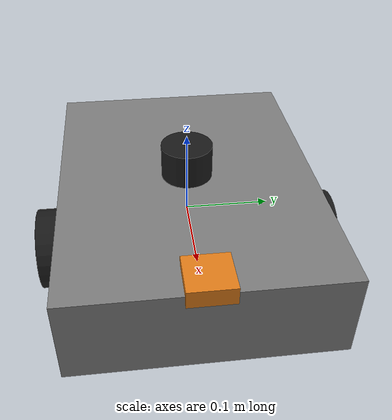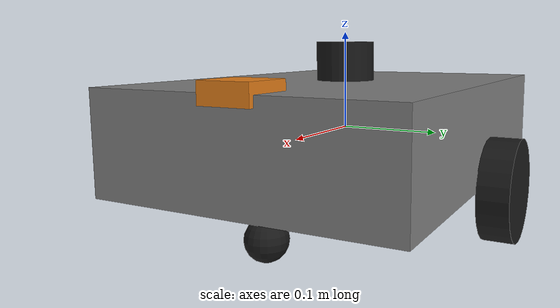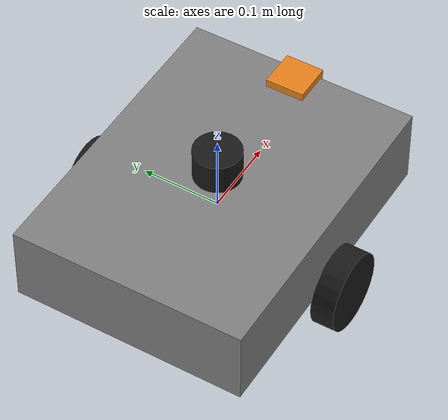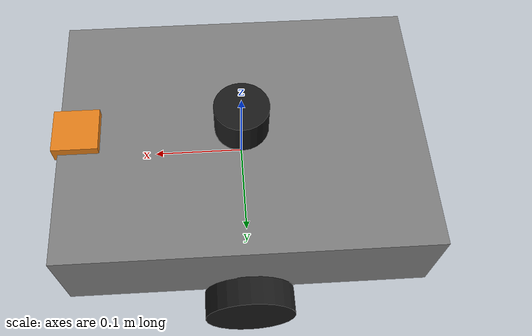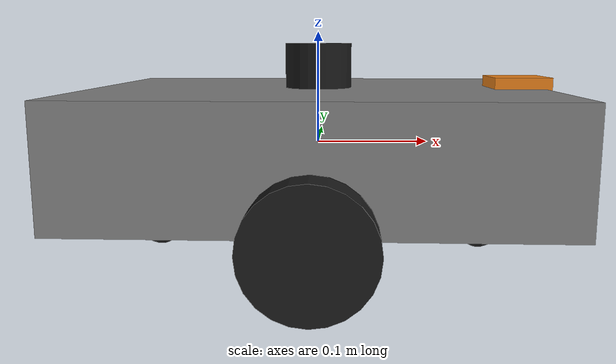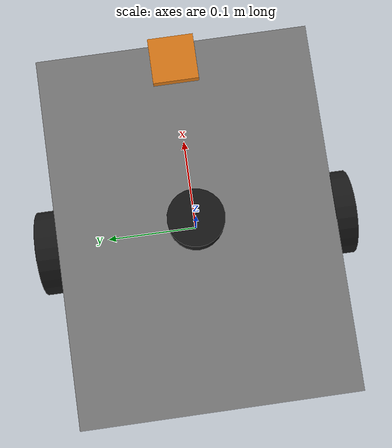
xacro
<?xml version="1.0"?>

<robot name="mobile_robot" xmlns:xacro="http://www.ros.org/wiki/xacro">

    <xacro:include filename="common_macros.xacro" />

    <!-- ============ 属性 ============ -->
    <!-- 底盘 -->
    <xacro:property name="base_length" value="0.4" />
    <xacro:property name="base_width" value="0.3" />
    <xacro:property name="base_height" value="0.1" />
    <xacro:property name="base_mass" value="3.0" />

    <!-- 驱动轮 -->
    <xacro:property name="wheel_radius" value="0.05" />
    <xacro:property name="wheel_width" value="0.03" />
    <xacro:property name="wheel_mass" value="0.3" />
    <xacro:property name="wheel_y" value="0.17" />

    <!-- 万向轮 -->
    <xacro:property name="caster_radius" value="0.02" />
    <xacro:property name="caster_mass" value="0.1" />

    <!-- 材质 -->
    <xacro:declare_material name="grey" rgba="0.5 0.5 0.5 1.0" />
    <xacro:declare_material name="black" rgba="0.1 0.1 0.1 1.0" />
    <xacro:declare_material name="orange" rgba="0.9 0.5 0.1 1.0" />

    <!-- ============ 底盘 ============ -->
    <link name="base_link">
        <visual>
            <geometry>
                <box size="${base_length} ${base_width} ${base_height}" />
            </geometry>
            <origin xyz="0 0 0" rpy="0 0 0" />
            <material name="grey" />
        </visual>
        <!-- 方向标记：橙色小方块在前方，方便区分朝向 -->
        <visual>
            <geometry>
                <box size="0.05 0.05 0.02" />
            </geometry>
            <origin xyz="0.18 0 0.05" rpy="0 0 0" />
            <material name="orange" />
        </visual>
        <collision>
            <geometry>
                <box size="${base_length} ${base_width} ${base_height}" />
            </geometry>
            <origin xyz="0 0 0" rpy="0 0 0" />
        </collision>
        <inertial>
            <origin xyz="0 0 0" rpy="0 0 0" />
            <mass value="${base_mass}" />
            <inertia
                ixx="${base_mass * (base_width*base_width + base_height*base_height) / 12}"
                ixy="0.0" ixz="0.0"
                iyy="${base_mass * (base_length*base_length + base_height*base_height) / 12}"
                iyz="0.0"
                izz="${base_mass * (base_length*base_length + base_width*base_width) / 12}" />
        </inertial>
    </link>

    <!-- ============ 左轮 ============ -->
    <link name="left_wheel_link">
        <visual>
            <geometry>
                <cylinder radius="${wheel_radius}" length="${wheel_width}" />
            </geometry>
            <origin xyz="0 0 0" rpy="${pi/2} 0 0" />
            <material name="black" />
        </visual>
        <collision>
            <geometry>
                <cylinder radius="${wheel_radius}" length="${wheel_width}" />
            </geometry>
            <origin xyz="0 0 0" rpy="${pi/2} 0 0" />
        </collision>
        <inertial>
            <origin xyz="0 0 0" rpy="0 0 0" />
            <mass value="${wheel_mass}" />
            <!-- 圆柱旋转 90° 后，轴向沿 y，所以 Iyy 是轴向惯量 -->
            <inertia
                ixx="${wheel_mass * (3*wheel_radius*wheel_radius + wheel_width*wheel_width) / 12}"
                ixy="0.0" ixz="0.0"
                iyy="${wheel_mass * wheel_radius * wheel_radius / 2}"
                iyz="0.0"
                izz="${wheel_mass * (3*wheel_radius*wheel_radius + wheel_width*wheel_width) / 12}" />
        </inertial>
    </link>

    <joint name="base_to_left_wheel" type="continuous">
        <parent link="base_link" />
        <child link="left_wheel_link" />
        <origin xyz="0 ${wheel_y} ${-base_height/2}" rpy="0 0 0" />
        <axis xyz="0 1 0" />
    </joint>

    <!-- ============ 右轮 ============ -->
    <link name="right_wheel_link">
        <visual>
            <geometry>
                <cylinder radius="${wheel_radius}" length="${wheel_width}" />
            </geometry>
            <origin xyz="0 0 0" rpy="${pi/2} 0 0" />
            <material name="black" />
        </visual>
        <collision>
            <geometry>
                <cylinder radius="${wheel_radius}" length="${wheel_width}" />
            </geometry>
            <origin xyz="0 0 0" rpy="${pi/2} 0 0" />
        </collision>
        <inertial>
            <origin xyz="0 0 0" rpy="0 0 0" />
            <mass value="${wheel_mass}" />
            <inertia
                ixx="${wheel_mass * (3*wheel_radius*wheel_radius + wheel_width*wheel_width) / 12}"
                ixy="0.0" ixz="0.0"
                iyy="${wheel_mass * wheel_radius * wheel_radius / 2}"
                iyz="0.0"
                izz="${wheel_mass * (3*wheel_radius*wheel_radius + wheel_width*wheel_width) / 12}" />
        </inertial>
    </link>

    <joint name="base_to_right_wheel" type="continuous">
        <parent link="base_link" />
        <child link="right_wheel_link" />
        <origin xyz="0 ${-wheel_y} ${-base_height/2}" rpy="0 0 0" />
        <axis xyz="0 1 0" />
    </joint>

    <!-- ============ 后万向轮 ============ -->
    <link name="caster_link">
        <visual>
            <geometry>
                <sphere radius="${caster_radius}" />
            </geometry>
            <material name="black" />
        </visual>
        <collision>
            <geometry>
                <sphere radius="${caster_radius}" />
            </geometry>
        </collision>
        <inertial>
            <origin xyz="0 0 0" rpy="0 0 0" />
            <mass value="${caster_mass}" />
            <inertia
                ixx="${2*caster_mass*caster_radius*caster_radius/5}"
                ixy="0.0" ixz="0.0"
                iyy="${2*caster_mass*caster_radius*caster_radius/5}"
                iyz="0.0"
                izz="${2*caster_mass*caster_radius*caster_radius/5}" />
        </inertial>
    </link>

    <joint name="base_to_caster" type="fixed">
        <parent link="base_link" />
        <child link="caster_link" />
        <origin xyz="-0.15 0 ${-base_height/2 - 0.03}" rpy="0 0 0" />
    </joint>

    <!-- ============ 前万向轮 ============ -->
    <link name="front_caster_link">
        <visual>
            <geometry>
                <sphere radius="${caster_radius}" />
            </geometry>
            <material name="black" />
        </visual>
        <collision>
            <geometry>
                <sphere radius="${caster_radius}" />
            </geometry>
        </collision>
        <inertial>
            <origin xyz="0 0 0" rpy="0 0 0" />
            <mass value="${caster_mass}" />
            <inertia
                ixx="${2*caster_mass*caster_radius*caster_radius/5}"
                ixy="0.0" ixz="0.0"
                iyy="${2*caster_mass*caster_radius*caster_radius/5}"
                iyz="0.0"
                izz="${2*caster_mass*caster_radius*caster_radius/5}" />
        </inertial>
    </link>

    <joint name="base_to_front_caster" type="fixed">
        <parent link="base_link" />
        <child link="front_caster_link" />
        <origin xyz="0.15 0 ${-base_height/2 - 0.03}" rpy="0 0 0" />
    </joint>

    <!-- 万向轮摩擦系数改为 0，让它能在平面上滑动 -->
    <gazebo reference="caster_link">
        <mu1>0.0</mu1>
        <mu2>0.0</mu2>
    </gazebo>

    <gazebo reference="front_caster_link">
        <mu1>0.0</mu1>
        <mu2>0.0</mu2>
    </gazebo>

    <!-- 轮子摩擦系数调高，保证抓地力 -->
    <gazebo reference="left_wheel_link">
        <mu1>1.0</mu1>
        <mu2>1.0</mu2>
    </gazebo>

    <gazebo reference="right_wheel_link">
        <mu1>1.0</mu1>
        <mu2>1.0</mu2>
    </gazebo>

    <!-- ============ ros2_control 硬件接口声明 ============ -->
    <ros2_control name="GazeboSystem" type="system">
        <hardware>
            <plugin>gz_ros2_control/GazeboSimSystem</plugin>
        </hardware>
        <joint name="base_to_left_wheel">
            <command_interface name="velocity">
                <param name="min">-10</param>
                <param name="max">10</param>
            </command_interface>
            <state_interface name="velocity" />
            <state_interface name="position" />
        </joint>
        <joint name="base_to_right_wheel">
            <command_interface name="velocity">
                <param name="min">-10</param>
                <param name="max">10</param>
            </command_interface>
            <state_interface name="velocity" />
            <state_interface name="position" />
        </joint>
    </ros2_control>

    <!-- ============ gz_ros2_control Gazebo 插件 ============ -->
    <gazebo>
        <plugin filename="libgz_ros2_control-system.so"
            name="gz_ros2_control::GazeboSimROS2ControlPlugin">
            <parameters>$(find learning_robot)/config/controllers.yaml</parameters>
        </plugin>
    </gazebo>

    <!-- ============ 激光雷达 ============ -->
    <xacro:property name="lidar_radius" value="0.03" />
    <xacro:property name="lidar_height" value="0.04" />
    <xacro:property name="lidar_mass" value="0.1" />

    <xacro:cylinder_link
        name="lidar_link"
        radius="${lidar_radius}" length="${lidar_height}"
        mass="${lidar_mass}" color="black" />

    <joint name="base_to_lidar" type="fixed">
        <parent link="base_link" />
        <child link="lidar_link" />
        <origin xyz="0 0 ${base_height/2 + lidar_height/2}" rpy="0 0 0" />
    </joint>

    <!-- ============ Gazebo 激光雷达传感器插件 ============ -->
    <gazebo reference="lidar_link">
        <sensor name="lidar" type="gpu_lidar">
            <topic>scan</topic>
            <gz_frame_id>lidar_link</gz_frame_id>
            <update_rate>10</update_rate>
            <always_on>true</always_on>
            <visualize>true</visualize>
            <lidar>
                <scan>
                    <horizontal>
                        <samples>360</samples>
                        <resolution>1</resolution>
                        <min_angle>-3.14159</min_angle>
                        <max_angle>3.14159</max_angle>
                    </horizontal>
                </scan>
                <range>
                    <min>0.1</min>
                    <max>10.0</max>
                    <resolution>0.01</resolution>
                </range>
                <noise>
                    <type>gaussian</type>
                    <mean>0.0</mean>
                    <stddev>0.01</stddev>
                </noise>
            </lidar>
        </sensor>
    </gazebo>

</robot>

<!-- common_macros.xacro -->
<robot xmlns:xacro="http://www.ros.org/wiki/xacro">

    <!-- ============ 通用材质 ============ -->
    <xacro:macro name="declare_material" params="name rgba">
        <material name="${name}">
            <color rgba="${rgba}" />
        </material>
    </xacro:macro>

    <!-- ============ 长方体 link ============ -->
    <xacro:macro name="box_link" params="name length width height mass color origin:='0 0 0'">
        <link name="${name}">
            <visual>
                <geometry>
                    <box size="${length} ${width} ${height}" />
                </geometry>
                <origin xyz="${origin}" rpy="0 0 0" />
                <material name="${color}" />
            </visual>
            <collision>
                <geometry>
                    <box size="${length} ${width} ${height}" />
                </geometry>
                <origin xyz="${origin}" rpy="0 0 0" />
            </collision>
            <inertial>
                <origin xyz="${origin}" rpy="0 0 0" />
                <mass value="${mass}" />
                <inertia
                    ixx="${mass * (width*width + height*height) / 12}"
                    ixy="0.0" ixz="0.0"
                    iyy="${mass * (length*length + height*height) / 12}"
                    iyz="0.0"
                    izz="${mass * (length*length + width*width) / 12}" />
            </inertial>
        </link>
    </xacro:macro>

    <!-- ============ 圆柱 link ============ -->
    <xacro:macro name="cylinder_link" params="name radius length mass color origin:='0 0 0'">
        <link name="${name}">
            <visual>
                <geometry>
                    <cylinder radius="${radius}" length="${length}" />
                </geometry>
                <origin xyz="${origin}" rpy="0 0 0" />
                <material name="${color}" />
            </visual>
            <collision>
                <geometry>
                    <cylinder radius="${radius}" length="${length}" />
                </geometry>
                <origin xyz="${origin}" rpy="0 0 0" />
            </collision>
            <inertial>
                <origin xyz="${origin}" rpy="0 0 0" />
                <mass value="${mass}" />
                <inertia
                    ixx="${mass * (3*radius*radius + length*length) / 12}"
                    ixy="0.0" ixz="0.0"
                    iyy="${mass * (3*radius*radius + length*length) / 12}"
                    iyz="0.0"
                    izz="${mass * radius * radius / 2}" />
            </inertial>
        </link>
    </xacro:macro>

</robot>
